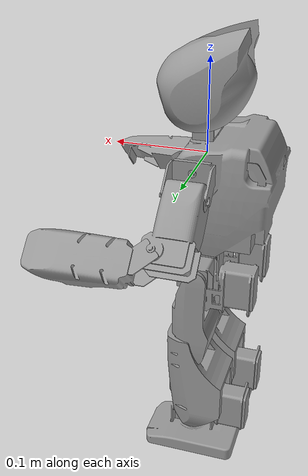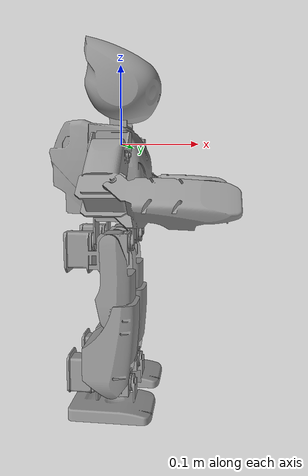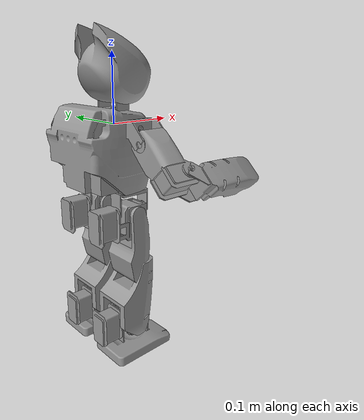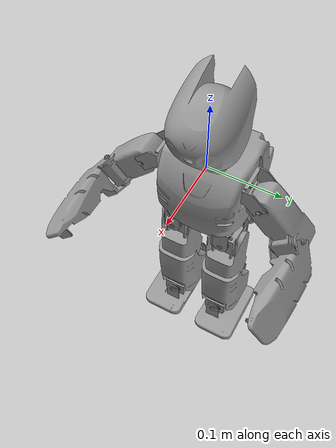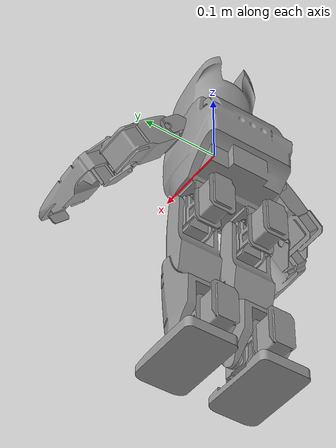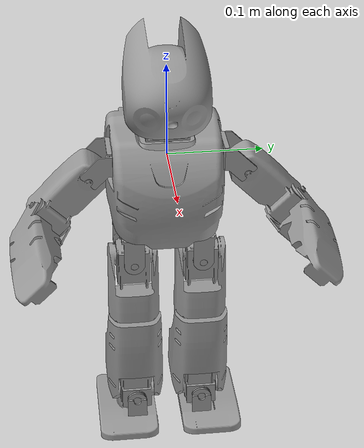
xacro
<?xml version="1.0" ?>
<robot xmlns:xacro="http://ros.org/wiki/xacro" name="robotis_op2">

	<xacro:include filename="$(find robot_description)/models/robotis_op2/urdf/robotis_op2.visuals.xacro" />

	<xacro:include filename="$(find robot_description)/models/robotis_op2/urdf/robotis_op2.structure.head.xacro" />
	<xacro:include filename="$(find robot_description)/models/robotis_op2/urdf/robotis_op2.structure.arm.xacro" />
	<xacro:include filename="$(find robot_description)/models/robotis_op2/urdf/robotis_op2.structure.leg.xacro" />

	<xacro:include filename="$(find robot_description)/models/robotis_op2/urdf/robotis_op2.inertia.xacro" />
	<xacro:include filename="$(find robot_description)/models/robotis_op2/urdf/robotis_op2.gazebo.xacro" />
	<xacro:include filename="$(find robot_description)/models/robotis_op2/urdf/robotis_op2.transmissions.xacro" />

        <!-- base link -->
	<link name="base_link"/>

	<joint name="base_joint" type="fixed">
		<parent link="base_link"/>
		<child link="body_link"/>
	</joint>

        <!-- body link -->
	<link name="body_link">
		<visual>
	        	<xacro:insert_mesh_body_link />
        	</visual>
        	<collision>
            		<xacro:insert_mesh_body_link />
        	</collision>
        	<inertial>
            		<xacro:insert_inertia_body_link />
        	</inertial>
    	</link>

        <!-- head links -->
	<xacro:robotis_op2_head parent="body_link" />

	<!-- arm links -->
	<xacro:robotis_op2_larm parent="body_link" />
	<xacro:robotis_op2_rarm parent="body_link" />

	<!-- leg links -->
	<xacro:robotis_op2_lleg parent="body_link" />
	<xacro:robotis_op2_rleg parent="body_link" />

</robot>

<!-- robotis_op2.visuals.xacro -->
<robot xmlns:xacro="http://ros.org/wiki/xacro">

	<!-- body link -->
	<xacro:macro name="insert_mesh_body_link">
		<origin xyz="0 0 0" rpy="0 0 ${-0.5*pi}" />
     		<geometry>
        	        <mesh filename="package://robot_description/models/robotis_op2/meshes/geo_op_body.stl"  scale="0.001 0.001 0.001"/>
      		</geometry>
      		<material name="Grey">
        		<color rgba="0.60 0.60 0.60 1.0"/>
      		</material>
	</xacro:macro>

	<!-- head links -->

	<xacro:macro name="insert_mesh_head_pan_link">
        	<origin xyz="0 0 0.03" rpy="0 0 ${-0.5*pi}" />
        	<geometry>
		        <mesh filename="package://robot_description/models/robotis_op2/meshes/geo_op_neck.stl"  scale="0.001 0.001 0.001"/>
        	</geometry>
      		<material name="Grey">
        		<color rgba="0.60 0.60 0.60 1.0"/>
        	</material>
	</xacro:macro>

	<xacro:macro name="insert_mesh_head_tilt_link">
    		<origin xyz="0 0 0" rpy="0 ${pi} ${0.5*pi}" />
      		<geometry>
        		<mesh filename="package://robot_description/models/robotis_op2/meshes/geo_op_head.stl"  scale="0.001 0.001 0.001"/>
      		</geometry>
      		<material name="Grey">
        		<color rgba="0.60 0.60 0.60 1.0"/>
      		</material>
	</xacro:macro>

	<!-- left arm links -->

	<xacro:macro name="insert_mesh_l_sho_pitch_link">
      		<origin xyz="0 0 0" rpy="0 0 ${-0.5*pi}" />
      		<geometry>
        		<mesh filename="package://robot_description/models/robotis_op2/meshes/geo_op_left_shoulder.stl"  scale="0.001 0.001 0.001"/>
      		</geometry>
      		<material name="Grey">
        		<color rgba="0.60 0.60 0.60 1.0"/>
      		</material>
	</xacro:macro>

	<xacro:macro name="insert_mesh_l_sho_roll_link">
      		<origin xyz="0 0 0" rpy="0 0 ${-0.5*pi}" />
      		<geometry>
        		<mesh filename="package://robot_description/models/robotis_op2/meshes/geo_op_left_upper-arm.stl"  scale="0.001 0.001 0.001"/>
      		</geometry>
      		<material name="Grey">
        		<color rgba="0.60 0.60 0.60 1.0"/>
      		</material>
	</xacro:macro>

	<xacro:macro name="insert_mesh_l_el_link">
      		<origin xyz="0 0 0" rpy="0 0 ${-0.5*pi}" />
      		<geometry>
        		<mesh filename="package://robot_description/models/robotis_op2/meshes/geo_op_left_lower-arm.stl"  scale="0.001 0.001 0.001"/>
      		</geometry>
      		<material name="Grey">
        		<color rgba="0.60 0.60 0.60 1.0"/>
      		</material>
	</xacro:macro>

	<!-- right arm links -->

	<xacro:macro name="insert_mesh_r_sho_pitch_link">
      		<origin xyz="0 0 0" rpy="0 0 ${-0.5*pi}" />
      		<geometry>
        		<mesh filename="package://robot_description/models/robotis_op2/meshes/geo_op_right_shoulder.stl"  scale="0.001 0.001 0.001"/>
      		</geometry>
      		<material name="Grey">
        		<color rgba="0.60 0.60 0.60 1.0"/>
      		</material>
	</xacro:macro>

	<xacro:macro name="insert_mesh_r_sho_roll_link">
      		<origin xyz="0 0 0" rpy="0 0 ${-0.5*pi}" />
      		<geometry>
        		<mesh filename="package://robot_description/models/robotis_op2/meshes/geo_op_right_upper-arm.stl"  scale="0.001 0.001 0.001"/>
      		</geometry>
      		<material name="Grey">
        		<color rgba="0.60 0.60 0.60 1.0"/>
      		</material>
	</xacro:macro>

	<xacro:macro name="insert_mesh_r_el_link">
      		<origin xyz="0 0 0" rpy="0 0 ${-0.5*pi}" />
      		<geometry>
        		<mesh filename="package://robot_description/models/robotis_op2/meshes/geo_op_right_lower-arm.stl"  scale="0.001 0.001 0.001"/>
      		</geometry>
      		<material name="Grey">
        		<color rgba="0.60 0.60 0.60 1.0"/>
      		</material>
	</xacro:macro>

	<!-- left leg links -->

	<xacro:macro name="insert_mesh_l_hip_yaw_link">
      		<origin xyz="0 0 0" rpy="0 0 ${-0.5*pi}" />
      		<geometry>
        		<mesh filename="package://robot_description/models/robotis_op2/meshes/geo_op_left_hip-yaw.stl"  scale="0.001 0.001 0.001"/>
      		</geometry>
      		<material name="Grey">
        		<color rgba="0.60 0.60 0.60 1.0"/>
      		</material>
	</xacro:macro>

	<xacro:macro name="insert_mesh_l_hip_roll_link">
      		<origin xyz="0 0 0" rpy="0 0 ${-0.5*pi}" />
      		<geometry>
        	        <mesh filename="package://robot_description/models/robotis_op2/meshes/geo_op_left_hip-roll.stl"  scale="0.001 0.001 0.001"/>
      		</geometry>
      		<material name="Grey">
        		<color rgba="0.60 0.60 0.60 1.0"/>
      		</material>
	</xacro:macro>

	<xacro:macro name="insert_mesh_l_hip_pitch_link">
      		<origin xyz="0 0 0" rpy="0 0 ${-0.5*pi}" />
      		<geometry>
        		<mesh filename="package://robot_description/models/robotis_op2/meshes/geo_op_left_thigh.stl"  scale="0.001 0.001 0.001"/>
      		</geometry>
      		<material name="Grey">
        		<color rgba="0.60 0.60 0.60 1.0"/>
      		</material>
	</xacro:macro>

	<xacro:macro name="insert_mesh_l_knee_link">
      		<origin xyz="0 0 0" rpy="0 0 ${-0.5*pi}" />
      		<geometry>
         		<mesh filename="package://robot_description/models/robotis_op2/meshes/geo_op_left_shin.stl"  scale="0.001 0.001 0.001"/>
      		</geometry>
      		<material name="Grey">
        		<color rgba="0.60 0.60 0.60 1.0"/>
      		</material>
	</xacro:macro>

	<xacro:macro name="insert_mesh_l_ank_pitch_link">
      		<origin xyz="0 0 0" rpy="0 0 ${-0.5*pi}" />
      		<geometry>
        		<mesh filename="package://robot_description/models/robotis_op2/meshes/geo_op_left_ankle.stl"  scale="0.001 0.001 0.001"/>
      		</geometry>
      		<material name="Grey">
        		<color rgba="0.60 0.60 0.60 1.0"/>
      		</material>
	</xacro:macro>

	<xacro:macro name="insert_mesh_l_ank_roll_link">
      		<origin xyz="0 0 0" rpy="0 0 ${-0.5*pi}" />
      		<geometry>
        		<mesh filename="package://robot_description/models/robotis_op2/meshes/geo_op_left_foot.stl"  scale="0.001 0.001 0.001"/>
      		</geometry>
      		<material name="Grey">
        		<color rgba="0.60 0.60 0.60 1.0"/>
      		</material>
	</xacro:macro>

	<!-- right leg links -->

	<xacro:macro name="insert_mesh_r_hip_yaw_link">
      		<origin xyz="0 0 0" rpy="0 0 ${-0.5*pi}" />
      		<geometry>
        		<mesh filename="package://robot_description/models/robotis_op2/meshes/geo_op_right_hip-yaw.stl"  scale="0.001 0.001 0.001"/>
      		</geometry>
      		<material name="Grey">
        		<color rgba="0.60 0.60 0.60 1.0"/>
      		</material>
	</xacro:macro>

	<xacro:macro name="insert_mesh_r_hip_roll_link">
      		<origin xyz="0 0 0" rpy="0 0 ${-0.5*pi}" />
      		<geometry>
        	        <mesh filename="package://robot_description/models/robotis_op2/meshes/geo_op_right_hip-roll.stl"  scale="0.001 0.001 0.001"/>
      		</geometry>
      		<material name="Grey">
        		<color rgba="0.60 0.60 0.60 1.0"/>
      		</material>
	</xacro:macro>

	<xacro:macro name="insert_mesh_r_hip_pitch_link">
      		<origin xyz="0 0 0" rpy="0 0 ${-0.5*pi}" />
      		<geometry>
        		<mesh filename="package://robot_description/models/robotis_op2/meshes/geo_op_right_thigh.stl"  scale="0.001 0.001 0.001"/>
      		</geometry>
      		<material name="Grey">
        		<color rgba="0.60 0.60 0.60 1.0"/>
      		</material>
	</xacro:macro>

	<xacro:macro name="insert_mesh_r_knee_link">
      		<origin xyz="0 0 -0.093" rpy="0 0 ${-0.5*pi}" />
      		<geometry>
         		<mesh filename="package://robot_description/models/robotis_op2/meshes/geo_op_right_shin.stl"  scale="0.001 0.001 0.001"/>
      		</geometry>
      		<material name="Grey">
        		<color rgba="0.60 0.60 0.60 1.0"/>
      		</material>
	</xacro:macro>

	<xacro:macro name="insert_mesh_r_ank_pitch_link">
      		<origin xyz="0 0 0" rpy="0 0 ${-0.5*pi}" />
      		<geometry>
        		<mesh filename="package://robot_description/models/robotis_op2/meshes/geo_op_right_ankle.stl"  scale="0.001 0.001 0.001"/>
      		</geometry>
      		<material name="Grey">
        		<color rgba="0.60 0.60 0.60 1.0"/>
      		</material>
	</xacro:macro>

	<xacro:macro name="insert_mesh_r_ank_roll_link">
      		<origin xyz="0 0 0" rpy="0 0 ${-0.5*pi}" />
      		<geometry>
        		<mesh filename="package://robot_description/models/robotis_op2/meshes/geo_op_right_foot.stl"  scale="0.001 0.001 0.001"/>
      		</geometry>
      		<material name="Grey">
        		<color rgba="0.60 0.60 0.60 1.0"/>
      		</material>
	</xacro:macro>

</robot>

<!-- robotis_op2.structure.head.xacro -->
<robot xmlns:xacro="http://ros.org/wiki/xacro">

	<xacro:macro name="robotis_op2_head" params="parent">

		<joint name="head_pan" type="revolute">
			<parent link="${parent}"/>
			<child link="head_pan_link"/>
			<origin xyz="0 0 0.0205" rpy="0 0 0" />
    			<axis xyz="0 0 1" />
    			<limit effort="2.8" velocity="5.6548668" lower="-2.6179939" upper="2.6179939" />
  		</joint>
        	<xacro:insert_transmission name="head_pan" />

	        <!-- head pan link -->
		<link name="head_pan_link">
			<visual>
		        	<xacro:insert_mesh_head_pan_link />
	        	</visual>
	        	<collision>
	            		<xacro:insert_mesh_head_pan_link />
	        	</collision>
	        	<inertial>
	            		<xacro:insert_inertia_head_pan_link />
	        	</inertial>
	    	</link>

		<joint name="head_tilt" type="revolute">
			<parent link="head_pan_link"/>
			<child link="head_tilt_link"/>
    			<origin xyz="0 0 0.03" rpy="0 ${33.0*pi/180.0} 0" />
    			<axis xyz="0 -1 0" />
    			<limit effort="2.8" velocity="5.6548668" lower="-2.6179939" upper="2.6179939" />
  		</joint>
        	<xacro:insert_transmission name="head_tilt" />

		<!-- head tilt link -->
		<link name="head_tilt_link">
			<visual>
		        	<xacro:insert_mesh_head_tilt_link />
	        	</visual>
	        	<collision>
	            		<xacro:insert_mesh_head_tilt_link />
	        	</collision>
	        	<inertial>
	            		<xacro:insert_inertia_head_tilt_link />
	        	</inertial>
	    	</link>

		<joint name="head_cam" type="fixed">
  			<parent link="head_tilt_link"/>
  			<child link="head_cam_link"/>
  			<origin xyz="0.0332 0 0.0344" rpy="0 0 0" />
  		</joint>

		<!-- head camera link -->
		<link name="head_cam_link" />

	</xacro:macro>

</robot>

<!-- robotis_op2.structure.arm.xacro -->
<robot xmlns:xacro="http://ros.org/wiki/xacro">

	<xacro:macro name="robotis_op2_larm" params="parent">

		<!-- left shoulder pitch link -->
		<joint name="l_sho_pitch" type="revolute">
			<parent link="${parent}"/>
			<child link="l_sho_pitch_link"/>
    			<origin xyz="0 0.0575 0" rpy="0 0 0" />
    			<axis xyz="0 1 0" />
   			<limit effort="2.8" velocity="5.6548668" lower="-2.6179939" upper="2.6179939" />
  		</joint>
        	<xacro:insert_transmission name="l_sho_pitch" />

		<link name="l_sho_pitch_link">
			<visual>
		        	<xacro:insert_mesh_l_sho_pitch_link />
	        	</visual>
	        	<collision>
	            		<xacro:insert_mesh_l_sho_pitch_link />
	        	</collision>
	        	<inertial>
	            		<xacro:insert_inertia_l_sho_pitch_link />
	        	</inertial>
	    	</link>

		<joint name="l_sho_roll" type="revolute">
			<parent link="l_sho_pitch_link"/>
			<child link="l_sho_roll_link"/>
    			<origin xyz="0 0.0245 -0.016" rpy="${45.0*pi/180.0} 0 0" />
    			<axis xyz="-1 0 0" />
    			<limit effort="2.8" velocity="5.648668" lower="-2.6179939" upper="2.6179939" />
  		</joint>
        	<xacro:insert_transmission name="l_sho_roll" />

		<!-- left shoulder roll link -->
		<link name="l_sho_roll_link">
			<visual>
		        	<xacro:insert_mesh_l_sho_roll_link />
	        	</visual>
	        	<collision>
	            		<xacro:insert_mesh_l_sho_roll_link />
	        	</collision>
	        	<inertial>
	            		<xacro:insert_inertia_l_sho_roll_link />
	        	</inertial>
	    	</link>

		<!-- left elbow link -->
		<joint name="l_el" type="revolute">
			<parent link="l_sho_roll_link"/>
			<child link="l_el_link"/>
    			<origin xyz="0.016 0 -0.06" rpy="0 ${-pi*0.5} 0" />
    			<axis xyz="0 1 0" />
    			<limit effort="2.8" velocity="5.6548668" lower="-2.6179939" upper="2.6179939" />
  		</joint>
        	<xacro:insert_transmission name="l_el" />

		<link name="l_el_link">
			<visual>
		        	<xacro:insert_mesh_l_el_link />
	        	</visual>
	        	<collision>
	            		<xacro:insert_mesh_l_el_link />
	        	</collision>
	        	<inertial>
	            		<xacro:insert_inertia_l_el_link />
	        	</inertial>
	    	</link>

	</xacro:macro>

	<xacro:macro name="robotis_op2_rarm" params="parent">

		<!-- right shoulder pitch link -->
		<joint name="r_sho_pitch" type="revolute">
			<parent link="${parent}"/>
			<child link="r_sho_pitch_link"/>
    			<origin xyz="0 -0.0575 0" rpy="0 0 0" />
    			<axis xyz="0 -1 0" />
    			<limit effort="2.8" velocity="5.6548668" lower="-2.6179939" upper="2.6179939" />
  		</joint>
        	<xacro:insert_transmission name="r_sho_pitch" />

		<link name="r_sho_pitch_link">
			<visual>
		        	<xacro:insert_mesh_r_sho_pitch_link />
	        	</visual>
	        	<collision>
	            		<xacro:insert_mesh_r_sho_pitch_link />
	        	</collision>
	        	<inertial>
	            		<xacro:insert_inertia_r_sho_pitch_link />
	        	</inertial>
	    	</link>

		<!-- right shoulder roll link -->
		<joint name="r_sho_roll" type="revolute">
			<parent link="r_sho_pitch_link"/>
			<child link="r_sho_roll_link"/>
    			<origin xyz="0 -0.0245 -0.016" rpy="${-45.0*pi/180.0} 0 0" />
    			<axis xyz="-1 0 0" />
    			<limit effort="2.8" velocity="5.648668" lower="-2.6179939" upper="2.6179939" />
  		</joint>
        	<xacro:insert_transmission name="r_sho_roll" />

		<link name="r_sho_roll_link">
			<visual>
		        	<xacro:insert_mesh_r_sho_roll_link />
	        	</visual>
	        	<collision>
	            		<xacro:insert_mesh_r_sho_roll_link />
	        	</collision>
	        	<inertial>
	            		<xacro:insert_inertia_r_sho_roll_link />
	        	</inertial>
	    	</link>

		<!-- right elbow link -->
		<joint name="r_el" type="revolute">
			<parent link="r_sho_roll_link"/>
			<child link="r_el_link"/>
    			<origin xyz="0.016 0 -0.06" rpy="0 ${-pi*0.5} 0" />
    			<axis xyz="0 -1 0" />
    			<limit effort="2.8" velocity="5.6548668" lower="-2.6179939" upper="2.6179939" />
  		</joint>
        	<xacro:insert_transmission name="r_el" />

		<link name="r_el_link">
			<visual>
		        	<xacro:insert_mesh_r_el_link />
	        	</visual>
	        	<collision>
	            		<xacro:insert_mesh_r_el_link />
	        	</collision>
	        	<inertial>
	            		<xacro:insert_inertia_r_el_link />
	        	</inertial>
	    	</link>

	</xacro:macro>

</robot>

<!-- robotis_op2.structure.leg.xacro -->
<robot xmlns:xacro="http://ros.org/wiki/xacro">

	<!-- left leg -->
	<xacro:macro name="robotis_op2_lleg" params="parent">

		<!-- left hip yaw link -->
		<joint name="l_hip_yaw" type="revolute">
			<parent link="${parent}"/>
			<child link="l_hip_yaw_link"/>
    			<origin xyz="-0.005 0.037 -0.0907" rpy="0 0 0" />
    			<axis xyz="0 0 -1" />
    			<limit effort="2.8" velocity="5.6548668" lower="-2.6179939" upper="2.6179939" />
  		</joint>
		<xacro:insert_transmission name="l_hip_yaw" />

		<link name="l_hip_yaw_link">
			<visual>
		        	<xacro:insert_mesh_l_hip_yaw_link />
	        	</visual>
	        	<collision>
	            		<xacro:insert_mesh_l_hip_yaw_link />
	        	</collision>
	        	<inertial>
	            		<xacro:insert_inertia_l_hip_yaw_link />
	        	</inertial>
	    	</link>

		<!-- left hip roll link -->
		<joint name="l_hip_roll" type="revolute">
			<parent link="l_hip_yaw_link"/>
			<child link="l_hip_roll_link"/>
    			<origin xyz="0 0 -0.0315" rpy="0 0 0" />
    			<axis xyz="-1 0 0" />
    			<limit effort="2.8" velocity="5.6548668" lower="-2.6179939" upper="2.6179939" />
  		</joint>
		<xacro:insert_transmission name="l_hip_roll" />

		<link name="l_hip_roll_link">
			<visual>
		        	<xacro:insert_mesh_l_hip_roll_link />
	        	</visual>
	        	<collision>
	            		<xacro:insert_mesh_l_hip_roll_link />
	        	</collision>
	        	<inertial>
	            		<xacro:insert_inertia_l_hip_roll_link />
	        	</inertial>
	    	</link>

		<!-- left hip pitch link -->
		<joint name="l_hip_pitch" type="revolute">
			<parent link="l_hip_roll_link"/>
			<child link="l_hip_pitch_link"/>
    			<origin xyz="0 0 0" rpy="0 0 0" />
    			<axis xyz="0 -1 0" />
    			<limit effort="2.8" velocity="5.6548668" lower="-2.6179939" upper="2.6179939" />
  		</joint>
		<xacro:insert_transmission name="l_hip_pitch" />

		<link name="l_hip_pitch_link">
			<visual>
		        	<xacro:insert_mesh_l_hip_pitch_link />
	        	</visual>
	        	<collision>
	            		<xacro:insert_mesh_l_hip_pitch_link />
	        	</collision>
	        	<inertial>
	            		<xacro:insert_inertia_l_hip_pitch_link />
	        	</inertial>
	    	</link>

		<!-- left knee link -->
		<joint name="l_knee" type="revolute">
			<parent link="l_hip_pitch_link"/>
			<child link="l_knee_link"/>
    			<origin xyz="0 0 -0.093" rpy="0 0 0" />
    			<axis xyz="0 -1 0" />
    			<limit effort="2.8" velocity="5.6548668" lower="-2.6179939" upper="2.6179939" />
  		</joint>
		<xacro:insert_transmission name="l_knee" />

		<link name="l_knee_link">
			<visual>
		        	<xacro:insert_mesh_l_knee_link />
	        	</visual>
	        	<collision>
	            		<xacro:insert_mesh_l_knee_link />
	        	</collision>
	        	<inertial>
	            		<xacro:insert_inertia_l_knee_link />
	        	</inertial>
	    	</link>

	        <!-- left ankle pitch link -->
		<joint name="l_ank_pitch" type="revolute">
			<parent link="l_knee_link"/>
			<child link="l_ank_pitch_link"/>
    			<origin xyz="0 0 -0.093" rpy="0 0 0" />
    			<axis xyz="0 1 0" />
    			<limit effort="2.8" velocity="5.6548668" lower="-2.6179939" upper="2.6179939" />
  		</joint>
		<xacro:insert_transmission name="l_ank_pitch" />

		<link name="l_ank_pitch_link">
			<visual>
		        	<xacro:insert_mesh_l_ank_pitch_link />
	        	</visual>
	        	<collision>
	            		<xacro:insert_mesh_l_ank_pitch_link />
	        	</collision>
	        	<inertial>
	            		<xacro:insert_inertia_l_ank_pitch_link />
	        	</inertial>
	    	</link>

		<!-- left ankle roll link -->
		<joint name="l_ank_roll" type="revolute">
			<parent link="l_ank_pitch_link"/>
			<child link="l_ank_roll_link"/>
    			<origin xyz="0 0 0" rpy="0 0 0" />
    			<axis xyz="1 0 0" />
    			<limit effort="2.8" velocity="5.6548668" lower="-2.6179939" upper="2.6179939" />
  		</joint>
		<xacro:insert_transmission name="l_ank_roll" />

		<link name="l_ank_roll_link">
			<visual>
		        	<xacro:insert_mesh_l_ank_roll_link />
	        	</visual>
	        	<collision>
	            		<xacro:insert_mesh_l_ank_roll_link />
	        	</collision>
	        	<inertial>
	            		<xacro:insert_inertia_l_ank_roll_link />
	        	</inertial>
	    	</link>

	</xacro:macro>

	<!-- right leg -->
	<xacro:macro name="robotis_op2_rleg" params="parent">

		<!-- right hip yaw link -->
		<joint name="r_hip_yaw" type="revolute">
			<parent link="${parent}"/>
			<child link="r_hip_yaw_link"/>
    			<origin xyz="-0.005 -0.037 -0.0907" rpy="0 0 0" />
    			<axis xyz="0 0 -1" />
    			<limit effort="2.8" velocity="5.6548668" lower="-2.6179939" upper="2.6179939" />
  		</joint>
		<xacro:insert_transmission name="r_hip_yaw" />

		<link name="r_hip_yaw_link">
			<visual>
		        	<xacro:insert_mesh_r_hip_yaw_link />
	        	</visual>
	        	<collision>
	            		<xacro:insert_mesh_r_hip_yaw_link />
	        	</collision>
	        	<inertial>
	            		<xacro:insert_inertia_r_hip_yaw_link />
	        	</inertial>
	    	</link>

		<!-- right hip roll link -->
		<joint name="r_hip_roll" type="revolute">
			<parent link="r_hip_yaw_link"/>
			<child link="r_hip_roll_link"/>
    			<origin xyz="0 0 -0.0315" rpy="0 0 0" />
    			<axis xyz="-1 0 0" />
    			<limit effort="2.8" velocity="5.6548668" lower="-2.6179939" upper="2.6179939" />
  		</joint>
		<xacro:insert_transmission name="r_hip_roll" />

		<link name="r_hip_roll_link">
			<visual>
		        	<xacro:insert_mesh_r_hip_roll_link />
	        	</visual>
	        	<collision>
	            		<xacro:insert_mesh_r_hip_roll_link />
	        	</collision>
	        	<inertial>
	            		<xacro:insert_inertia_r_hip_roll_link />
	        	</inertial>
	    	</link>

		<!-- right hip pitch link -->
		<joint name="r_hip_pitch" type="revolute">
			<parent link="r_hip_roll_link"/>
			<child link="r_hip_pitch_link"/>
    			<origin xyz="0 0 0" rpy="0 0 0" />
    			<axis xyz="0 1 0" />
    			<limit effort="2.8" velocity="5.6548668" lower="-2.6179939" upper="2.6179939" />
  		</joint>
		<xacro:insert_transmission name="r_hip_pitch" />

		<link name="r_hip_pitch_link">
			<visual>
		        	<xacro:insert_mesh_r_hip_pitch_link />
	        	</visual>
	        	<collision>
	            		<xacro:insert_mesh_r_hip_pitch_link />
	        	</collision>
	        	<inertial>
	            		<xacro:insert_inertia_r_hip_pitch_link />
	        	</inertial>
	    	</link>

		<!-- right knee link -->
		<joint name="r_knee" type="revolute">
			<parent link="r_hip_pitch_link"/>
			<child link="r_knee_link"/>
    			<origin xyz="0 0 -0.093" rpy="0 0 0" />
    			<axis xyz="0 1 0" />
    			<limit effort="2.8" velocity="5.6548668" lower="-2.6179939" upper="2.6179939" />
  		</joint>
		<xacro:insert_transmission name="r_knee" />

		<link name="r_knee_link">
			<visual>
		        	<xacro:insert_mesh_r_knee_link />
	        	</visual>
	        	<collision>
	            		<xacro:insert_mesh_r_knee_link />
	        	</collision>
	        	<inertial>
	            		<xacro:insert_inertia_r_knee_link />
	        	</inertial>
	    	</link>

	        <!-- right ankle pitch link -->
		<joint name="r_ank_pitch" type="revolute">
			<parent link="r_knee_link"/>
			<child link="r_ank_pitch_link"/>
    			<origin xyz="0 0 -0.093" rpy="0 0 0" />
    			<axis xyz="0 -1 0" />
    			<limit effort="2.8" velocity="5.6548668" lower="-2.6179939" upper="2.6179939" />
  		</joint>
		<xacro:insert_transmission name="r_ank_pitch" />

		<link name="r_ank_pitch_link">
			<visual>
		        	<xacro:insert_mesh_r_ank_pitch_link />
	        	</visual>
	        	<collision>
	            		<xacro:insert_mesh_r_ank_pitch_link />
	        	</collision>
	        	<inertial>
	            		<xacro:insert_inertia_r_ank_pitch_link />
	        	</inertial>
	    	</link>

		<!-- right ankle roll link -->
		<joint name="r_ank_roll" type="revolute">
			<parent link="r_ank_pitch_link"/>
			<child link="r_ank_roll_link"/>
    			<origin xyz="0 0 0" rpy="0 0 0" />
    			<axis xyz="1 0 0" />
    			<limit effort="2.8" velocity="5.6548668" lower="-2.6179939" upper="2.6179939" />
  		</joint>
		<xacro:insert_transmission name="r_ank_roll" />

		<link name="r_ank_roll_link">
			<visual>
		        	<xacro:insert_mesh_r_ank_roll_link />
	        	</visual>
	        	<collision>
	            		<xacro:insert_mesh_r_ank_roll_link />
	        	</collision>
	        	<inertial>
	            		<xacro:insert_inertia_r_ank_roll_link />
	        	</inertial>
	    	</link>

	</xacro:macro>

</robot>

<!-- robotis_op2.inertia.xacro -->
<robot xmlns:xacro="http://ros.org/wiki/xacro">

     	<!-- body link -->
	<xacro:macro name="insert_inertia_body_link">
      		<origin xyz="0 0 0" />
      		<mass value="0.975"/>
      		<inertia ixx="1.0"  ixy="0.0"  ixz="0.0" iyy="1.0" iyz="0.0" izz="0.0" />
	</xacro:macro>

	<!-- head links -->
	<xacro:macro name="insert_inertia_head_pan_link">
      		<origin xyz="0 0 0" />
      		<mass value="0.0243"/>
      		<inertia ixx="1.0"  ixy="0.0"  ixz="0.0" iyy="1.0" iyz="0.0" izz="0.0" />
	</xacro:macro>

	<xacro:macro name="insert_inertia_head_tilt_link">
      		<origin xyz="0 0 0" />
      		<mass value="0.158"/>
      		<inertia ixx="1.0"  ixy="0.0"  ixz="0.0" iyy="1.0" iyz="0.0" izz="0.0" />
	</xacro:macro>

	<!-- left arm links -->
	<xacro:macro name="insert_inertia_l_back_link">
      		<origin xyz="0 0 0" />
      		<mass value="0.01"/>
      		<inertia ixx="1.0"  ixy="0.0"  ixz="0.0" iyy="1.0" iyz="0.0" izz="0.0" />
	</xacro:macro>

	<xacro:macro name="insert_inertia_l_sho_pitch_link">
      		<origin xyz="0 0 0" />
      		<mass value="0.0259"/>
      		<inertia ixx="1.0"  ixy="0.0"  ixz="0.0" iyy="1.0" iyz="0.0" izz="0.0" />
	</xacro:macro>

	<xacro:macro name="insert_inertia_l_sho_roll_link">
      		<origin xyz="0 0 0" />
      		<mass value="0.168"/>
      		<inertia ixx="1.0"  ixy="0.0"  ixz="0.0" iyy="1.0" iyz="0.0" izz="0.0" />
	</xacro:macro>

	<xacro:macro name="insert_inertia_l_el_link">
      		<origin xyz="0 0 0" />
      		<mass value="0.0592"/>
      		<inertia ixx="1.0"  ixy="0.0"  ixz="0.0" iyy="1.0" iyz="0.0" izz="0.0" />
	</xacro:macro>

	<!-- right arm links -->
	<xacro:macro name="insert_inertia_r_back_link">
      		<origin xyz="0 0 0" />
      		<mass value="0.01"/>
      		<inertia ixx="1.0"  ixy="0.0"  ixz="0.0" iyy="1.0" iyz="0.0" izz="0.0" />
	</xacro:macro>

	<xacro:macro name="insert_inertia_r_sho_pitch_link">
      		<origin xyz="0 0 0" />
      		<mass value="0.0259"/>
      		<inertia ixx="1.0"  ixy="0.0"  ixz="0.0" iyy="1.0" iyz="0.0" izz="0.0" />
	</xacro:macro>

	<xacro:macro name="insert_inertia_r_sho_roll_link">
      		<origin xyz="0 0 0" />
      		<mass value="0.168"/>
      		<inertia ixx="1.0"  ixy="0.0"  ixz="0.0" iyy="1.0" iyz="0.0" izz="0.0" />
	</xacro:macro>

	<xacro:macro name="insert_inertia_r_el_link">
      		<origin xyz="0 0 0" />
      		<mass value="0.0592"/>
      		<inertia ixx="1.0"  ixy="0.0"  ixz="0.0" iyy="1.0" iyz="0.0" izz="0.0" />
	</xacro:macro>

	<!-- left leg links -->
	<xacro:macro name="insert_inertia_l_hip_yaw_link">
      		<origin xyz="0 0 0" />
      		<mass value="0.167"/>
      		<inertia ixx="1.0"  ixy="0.0"  ixz="0.0" iyy="1.0" iyz="0.0" izz="0.0" />
	</xacro:macro>

	<xacro:macro name="insert_inertia_l_hip_roll_link">
      		<origin xyz="0 0 0" />
      		<mass value="0.119"/>
      		<inertia ixx="1.0"  ixy="0.0"  ixz="0.0" iyy="1.0" iyz="0.0" izz="0.0" />
	</xacro:macro>

	<xacro:macro name="insert_inertia_l_hip_pitch_link">
      		<origin xyz="0 0 0" />
      		<mass value="0.119"/>
      		<inertia ixx="1.0"  ixy="0.0"  ixz="0.0" iyy="1.0" iyz="0.0" izz="0.0" />
	</xacro:macro>

	<xacro:macro name="insert_inertia_l_knee_link">
      		<origin xyz="0 0 0" />
      		<mass value="0.0703"/>
      		<inertia ixx="1.0"  ixy="0.0"  ixz="0.0" iyy="1.0" iyz="0.0" izz="0.0" />
	</xacro:macro>

	<xacro:macro name="insert_inertia_l_ank_pitch_link">
      		<origin xyz="0 0 0" />
      		<mass value="0.167"/>
      		<inertia ixx="1.0"  ixy="0.0"  ixz="0.0" iyy="1.0" iyz="0.0" izz="0.0" />
	</xacro:macro>

	<xacro:macro name="insert_inertia_l_ank_roll_link">
      		<origin xyz="0 0 0" />
      		<mass value="0.0794"/>
      		<inertia ixx="1.0"  ixy="0.0"  ixz="0.0" iyy="1.0" iyz="0.0" izz="0.0" />
	</xacro:macro>

	<!-- left leg links -->
	<xacro:macro name="insert_inertia_r_hip_yaw_link">
      		<origin xyz="0 0 0" />
      		<mass value="0.167"/>
      		<inertia ixx="1.0"  ixy="0.0"  ixz="0.0" iyy="1.0" iyz="0.0" izz="0.0" />
      	</xacro:macro>

	<xacro:macro name="insert_inertia_r_hip_roll_link">
      		<origin xyz="0 0 0" />
      		<mass value="0.119"/>
      		<inertia ixx="1.0"  ixy="0.0"  ixz="0.0" iyy="1.0" iyz="0.0" izz="0.0" />
      	</xacro:macro>

	<xacro:macro name="insert_inertia_r_hip_pitch_link">
      		<origin xyz="0 0 0" />
      		<mass value="0.119"/>
      		<inertia ixx="1.0"  ixy="0.0"  ixz="0.0" iyy="1.0" iyz="0.0" izz="0.0" />
	</xacro:macro>

	<xacro:macro name="insert_inertia_r_knee_link">
      		<origin xyz="0 0 0" />
      		<mass value="0.0703"/>
      		<inertia ixx="1.0"  ixy="0.0"  ixz="0.0" iyy="1.0" iyz="0.0" izz="0.0" />
	</xacro:macro>

	<xacro:macro name="insert_inertia_r_ank_pitch_link">
      		<origin xyz="0 0 0" />
      		<mass value="0.167"/>
      		<inertia ixx="1.0"  ixy="0.0"  ixz="0.0" iyy="1.0" iyz="0.0" izz="0.0" />
	</xacro:macro>

	<xacro:macro name="insert_inertia_r_ank_roll_link">
      		<origin xyz="0 0 0" />
      		<mass value="0.0794"/>
      		<inertia ixx="1.0"  ixy="0.0"  ixz="0.0" iyy="1.0" iyz="0.0" izz="0.0" />
	</xacro:macro>

</robot>
